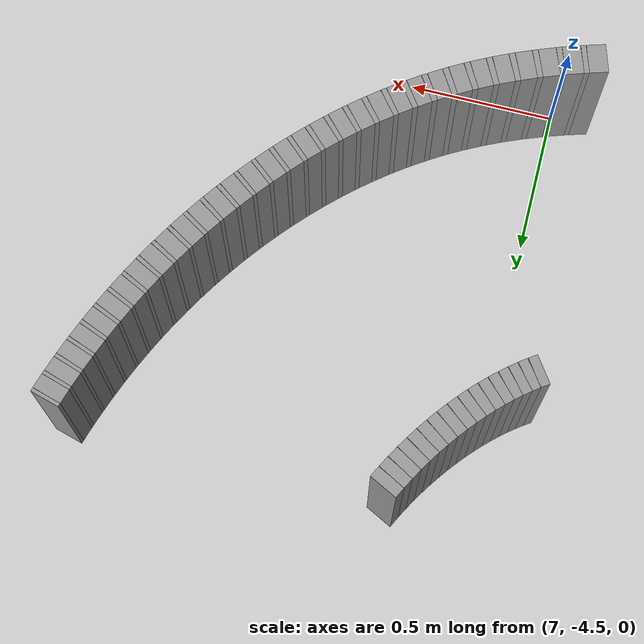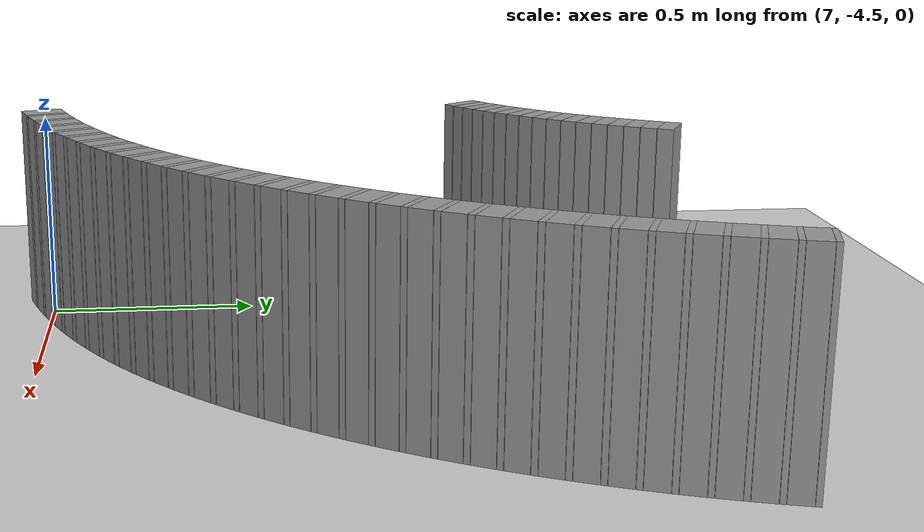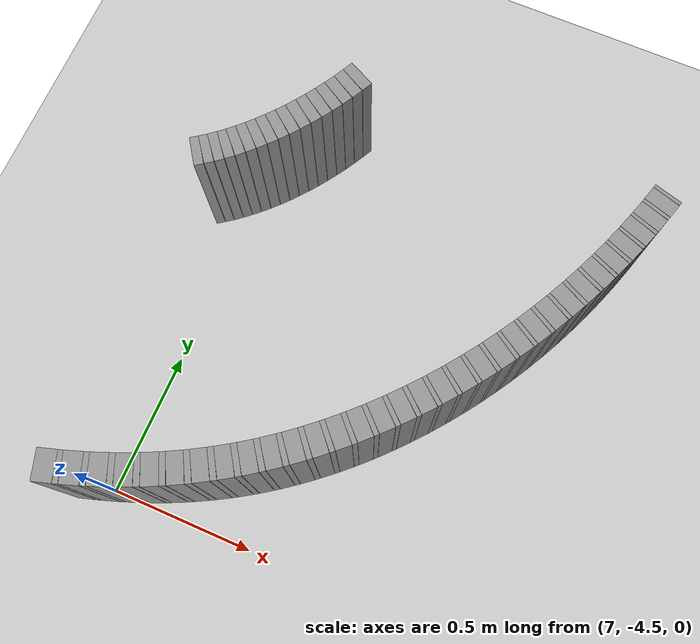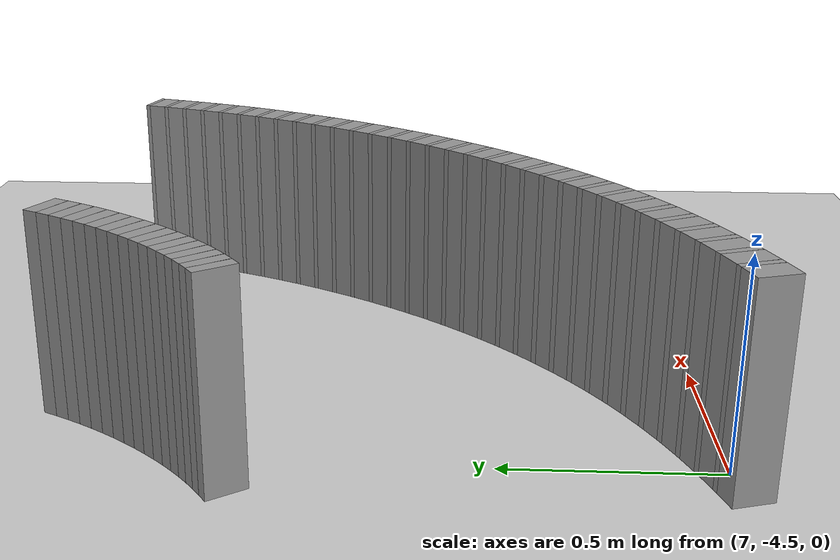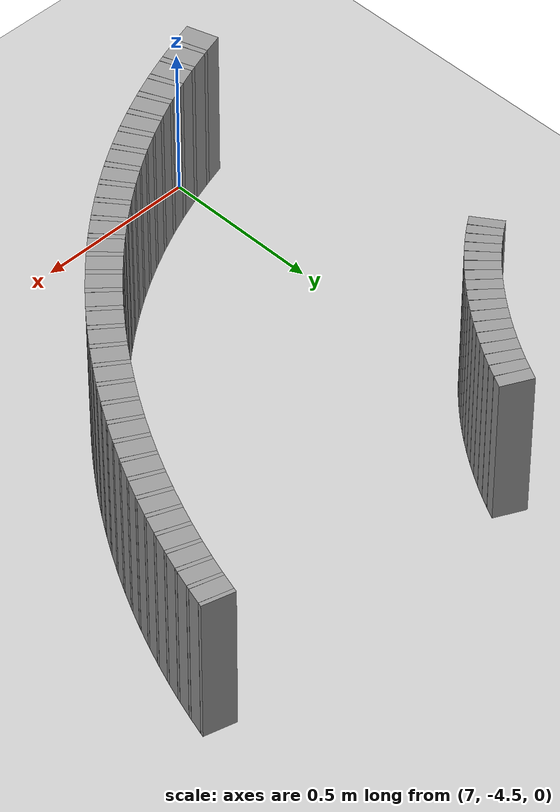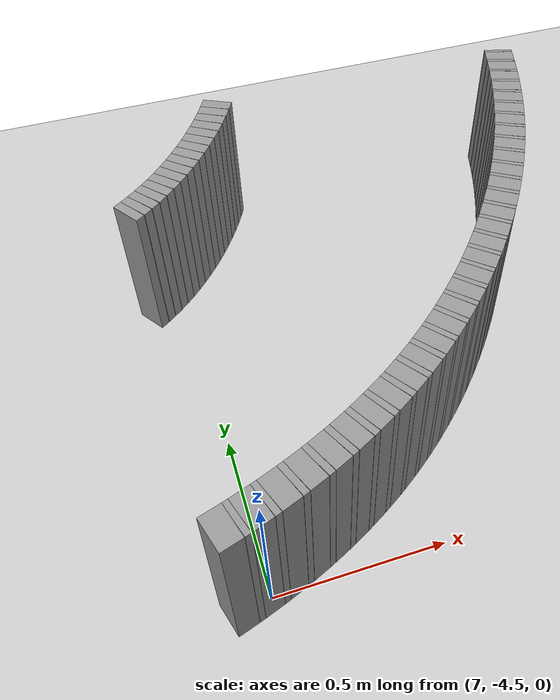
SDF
<sdf version="1.6">
 <world name="default">
  <include><uri>model://ground_plane</uri></include>
  <include><uri>model://sun</uri></include>
  <model name="wall_257_outward">
   <static>true</static>
   <link name="link">
    <collision name="collision">
     <geometry><box><size>0.012117398656583704 0.1 0.5</size></box></geometry>
    </collision>
    <visual name="visual">
     <geometry><box><size>0.012117398656583704 0.1 0.5</size></box></geometry>
     <material>
      <script><uri>file://media/materials/scripts/gazebo.material</uri><name>Gazebo/Gray</name></script>
     </material>
    </visual>
   </link>
   <pose>8.311836411692706 -2.988323035642761 0.25 0 0 -1.8441570290043392</pose>
  </model>
  <model name="wall_258_outward">
   <static>true</static>
   <link name="link">
    <collision name="collision">
     <geometry><box><size>0.050341118411923264 0.1 0.5</size></box></geometry>
    </collision>
    <visual name="visual">
     <geometry><box><size>0.050341118411923264 0.1 0.5</size></box></geometry>
     <material>
      <script><uri>file://media/materials/scripts/gazebo.material</uri><name>Gazebo/Gray</name></script>
     </material>
    </visual>
   </link>
   <pose>8.303112306214574 -3.018308601828476 0.25 0 0 -1.8562747242161695</pose>
  </model>
  <model name="wall_259_outward">
   <static>true</static>
   <link name="link">
    <collision name="collision">
     <geometry><box><size>0.012215638567459722 0.1 0.5</size></box></geometry>
    </collision>
    <visual name="visual">
     <geometry><box><size>0.012215638567459722 0.1 0.5</size></box></geometry>
     <material>
      <script><uri>file://media/materials/scripts/gazebo.material</uri><name>Gazebo/Gray</name></script>
     </material>
    </visual>
   </link>
   <pose>8.294232335303803 -3.048299602741462 0.25 0 0 -1.8684906666106553</pose>
  </model>
  <model name="wall_260_outward">
   <static>true</static>
   <link name="link">
    <collision name="collision">
     <geometry><box><size>0.050685427805786706 0.1 0.5</size></box></geometry>
    </collision>
    <visual name="visual">
     <geometry><box><size>0.050685427805786706 0.1 0.5</size></box></geometry>
     <material>
      <script><uri>file://media/materials/scripts/gazebo.material</uri><name>Gazebo/Gray</name></script>
     </material>
    </visual>
   </link>
   <pose>8.284711961249569 -3.0782741822526694 0.25 0 0 -1.8807066090052074</pose>
  </model>
  <model name="wall_261_outward">
   <static>true</static>
   <link name="link">
    <collision name="collision">
     <geometry><box><size>0.012362790423582197 0.1 0.5</size></box></geometry>
    </collision>
    <visual name="visual">
     <geometry><box><size>0.012362790423582197 0.1 0.5</size></box></geometry>
     <material>
      <script><uri>file://media/materials/scripts/gazebo.material</uri><name>Gazebo/Gray</name></script>
     </material>
    </visual>
   </link>
   <pose>8.275025318324577 -3.108272756564287 0.25 0 0 -1.8930697143691186</pose>
  </model>
  <model name="wall_262_outward">
   <static>true</static>
   <link name="link">
    <collision name="collision">
     <geometry><box><size>0.05105642980769891 0.1 0.5</size></box></geometry>
    </collision>
    <visual name="visual">
     <geometry><box><size>0.05105642980769891 0.1 0.5</size></box></geometry>
     <material>
      <script><uri>file://media/materials/scripts/gazebo.material</uri><name>Gazebo/Gray</name></script>
     </material>
    </visual>
   </link>
   <pose>8.264683398165502 -3.138248078785422 0.25 0 0 -1.9054328197328334</pose>
  </model>
  <model name="wall_263_outward">
   <static>true</static>
   <link name="link">
    <collision name="collision">
     <geometry><box><size>0.012544282890165561 0.1 0.5</size></box></geometry>
    </collision>
    <visual name="visual">
     <geometry><box><size>0.012544282890165561 0.1 0.5</size></box></geometry>
     <material>
      <script><uri>file://media/materials/scripts/gazebo.material</uri><name>Gazebo/Gray</name></script>
     </material>
    </visual>
   </link>
   <pose>8.254165186090212 -3.168258155124505 0.25 0 0 -1.917977431638995</pose>
  </model>
  <model name="wall_264_outward">
   <static>true</static>
   <link name="link">
    <collision name="collision">
     <geometry><box><size>0.05144195458399046 0.1 0.5</size></box></geometry>
    </collision>
    <visual name="visual">
     <geometry><box><size>0.05144195458399046 0.1 0.5</size></box></geometry>
     <material>
      <script><uri>file://media/materials/scripts/gazebo.material</uri><name>Gazebo/Gray</name></script>
     </material>
    </visual>
   </link>
   <pose>8.242976865033542 -3.1982307381199235 0.25 0 0 -1.9305220435451738</pose>
  </model>
  <model name="wall_265_outward">
   <static>true</static>
   <link name="link">
    <collision name="collision">
     <geometry><box><size>0.012773202160741256 0.1 0.5</size></box></geometry>
    </collision>
    <visual name="visual">
     <geometry><box><size>0.012773202160741256 0.1 0.5</size></box></geometry>
     <material>
      <script><uri>file://media/materials/scripts/gazebo.material</uri><name>Gazebo/Gray</name></script>
     </material>
    </visual>
   </link>
   <pose>8.231598262497474 -3.22825401560275 0.25 0 0 -1.9432955930660338</pose>
  </model>
  <model name="wall_266_outward">
   <static>true</static>
   <link name="link">
    <collision name="collision">
     <geometry><box><size>0.05183221490308721 0.1 0.5</size></box></geometry>
    </collision>
    <visual name="visual">
     <geometry><box><size>0.05183221490308721 0.1 0.5</size></box></geometry>
     <material>
      <script><uri>file://media/materials/scripts/gazebo.material</uri><name>Gazebo/Gray</name></script>
     </material>
    </visual>
   </link>
   <pose>8.219534311234566 -3.258218979354377 0.25 0 0 -1.956069142586938</pose>
  </model>
  <model name="wall_267_outward">
   <static>true</static>
   <link name="link">
    <collision name="collision">
     <geometry><box><size>0.013014942347406548 0.1 0.5</size></box></geometry>
    </collision>
    <visual name="visual">
     <geometry><box><size>0.013014942347406548 0.1 0.5</size></box></geometry>
     <material>
      <script><uri>file://media/materials/scripts/gazebo.material</uri><name>Gazebo/Gray</name></script>
     </material>
    </visual>
   </link>
   <pose>8.207270863555824 -3.2882334380961953 0.25 0 0 -1.9690844523931637</pose>
  </model>
  <model name="wall_268_outward">
   <static>true</static>
   <link name="link">
    <collision name="collision">
     <geometry><box><size>0.05221585492356248 0.1 0.5</size></box></geometry>
    </collision>
    <visual name="visual">
     <geometry><box><size>0.05221585492356248 0.1 0.5</size></box></geometry>
     <material>
      <script><uri>file://media/materials/scripts/gazebo.material</uri><name>Gazebo/Gray</name></script>
     </material>
    </visual>
   </link>
   <pose>8.194308935031506 -3.318162084194831 0.25 0 0 -1.982099762199294</pose>
  </model>
  <model name="wall_269_outward">
   <static>true</static>
   <link name="link">
    <collision name="collision">
     <geometry><box><size>0.013266602703595988 0.1 0.5</size></box></geometry>
    </collision>
    <visual name="visual">
     <geometry><box><size>0.013266602703595988 0.1 0.5</size></box></geometry>
     <material>
      <script><uri>file://media/materials/scripts/gazebo.material</uri><name>Gazebo/Gray</name></script>
     </material>
    </visual>
   </link>
   <pose>8.181138419085965 -3.34813699190355 0.25 0 0 -1.9953667540933722</pose>
  </model>
  <model name="wall_270_outward">
   <static>true</static>
   <link name="link">
    <collision name="collision">
     <geometry><box><size>0.052581042324537204 0.1 0.5</size></box></geometry>
    </collision>
    <visual name="visual">
     <geometry><box><size>0.052581042324537204 0.1 0.5</size></box></geometry>
     <material>
      <script><uri>file://media/materials/scripts/gazebo.material</uri><name>Gazebo/Gray</name></script>
     </material>
    </visual>
   </link>
   <pose>8.16725926295241 -3.377991914763429 0.25 0 0 -2.0086337459876487</pose>
  </model>
  <model name="wall_271_outward">
   <static>true</static>
   <link name="link">
    <collision name="collision">
     <geometry><box><size>0.01351271025179977 0.1 0.5</size></box></geometry>
    </collision>
    <visual name="visual">
     <geometry><box><size>0.01351271025179977 0.1 0.5</size></box></geometry>
     <material>
      <script><uri>file://media/materials/scripts/gazebo.material</uri><name>Gazebo/Gray</name></script>
     </material>
    </visual>
   </link>
   <pose>8.15316556330174 -3.4078822347244837 0.25 0 0 -2.0221468674950125</pose>
  </model>
  <model name="wall_272_outward">
   <static>true</static>
   <link name="link">
    <collision name="collision">
     <geometry><box><size>0.05291419419117755 0.1 0.5</size></box></geometry>
    </collision>
    <visual name="visual">
     <geometry><box><size>0.05291419419117755 0.1 0.5</size></box></geometry>
     <material>
      <script><uri>file://media/materials/scripts/gazebo.material</uri><name>Gazebo/Gray</name></script>
     </material>
    </visual>
   </link>
   <pose>8.13835782664763 -3.437611541863321 0.25 0 0 -2.035659989002458</pose>
  </model>
  <model name="wall_273_outward">
   <static>true</static>
   <link name="link">
    <collision name="collision">
     <geometry><box><size>0.013732710071505594 0.1 0.5</size></box></geometry>
    </collision>
    <visual name="visual">
     <geometry><box><size>0.013732710071505594 0.1 0.5</size></box></geometry>
     <material>
      <script><uri>file://media/materials/scripts/gazebo.material</uri><name>Gazebo/Gray</name></script>
     </material>
    </visual>
   </link>
   <pose>8.123334894673405 -3.467355948324669 0.25 0 0 -2.049393130746388</pose>
  </model>
  <model name="wall_274_outward">
   <static>true</static>
   <link name="link">
    <collision name="collision">
     <geometry><box><size>0.053199249804912356 0.1 0.5</size></box></geometry>
    </collision>
    <visual name="visual">
     <geometry><box><size>0.053199249804912356 0.1 0.5</size></box></geometry>
     <material>
      <script><uri>file://media/materials/scripts/gazebo.material</uri><name>Gazebo/Gray</name></script>
     </material>
    </visual>
   </link>
   <pose>8.107599582834549 -3.4968913055915074 0.25 0 0 -2.063126272490414</pose>
  </model>
  <model name="wall_275_outward">
   <static>true</static>
   <link name="link">
    <collision name="collision">
     <geometry><box><size>0.013925907889457318 0.1 0.5</size></box></geometry>
    </collision>
    <visual name="visual">
     <geometry><box><size>0.013925907889457318 0.1 0.5</size></box></geometry>
     <material>
      <script><uri>file://media/materials/scripts/gazebo.material</uri><name>Gazebo/Gray</name></script>
     </material>
    </visual>
   </link>
   <pose>8.0916500796604 -3.526421360235971 0.25 0 0 -2.0770526305298547</pose>
  </model>
  <model name="wall_276_outward">
   <static>true</static>
   <link name="link">
    <collision name="collision">
     <geometry><box><size>0.053421078922679874 0.1 0.5</size></box></geometry>
    </collision>
    <visual name="visual">
     <geometry><box><size>0.053421078922679874 0.1 0.5</size></box></geometry>
     <material>
      <script><uri>file://media/materials/scripts/gazebo.material</uri><name>Gazebo/Gray</name></script>
     </material>
    </visual>
   </link>
   <pose>8.074997527339576 -3.55568841662239 0.25 0 0 -2.090978988569217</pose>
  </model>
  <model name="wall_277_outward">
   <static>true</static>
   <link name="link">
    <collision name="collision">
     <geometry><box><size>0.01408927794531491 0.1 0.5</size></box></geometry>
    </collision>
    <visual name="visual">
     <geometry><box><size>0.01408927794531491 0.1 0.5</size></box></geometry>
     <material>
      <script><uri>file://media/materials/scripts/gazebo.material</uri><name>Gazebo/Gray</name></script>
     </material>
    </visual>
   </link>
   <pose>8.058134121266002 -3.5849288039731713 0.25 0 0 -2.1050687326946447</pose>
  </model>
  <model name="wall_278_outward">
   <static>true</static>
   <link name="link">
    <collision name="collision">
     <geometry><box><size>0.05356233773347308 0.1 0.5</size></box></geometry>
    </collision>
    <visual name="visual">
     <geometry><box><size>0.05356233773347308 0.1 0.5</size></box></geometry>
     <material>
      <script><uri>file://media/materials/scripts/gazebo.material</uri><name>Gazebo/Gray</name></script>
     </material>
    </visual>
   </link>
   <pose>8.04058612414238 -3.6138461970070836 0.25 0 0 -2.119158476820119</pose>
  </model>
  <model name="wall_279_outward">
   <static>true</static>
   <link name="link">
    <collision name="collision">
     <geometry><box><size>0.014243860450679475 0.1 0.5</size></box></geometry>
    </collision>
    <visual name="visual">
     <geometry><box><size>0.014243860450679475 0.1 0.5</size></box></geometry>
     <material>
      <script><uri>file://media/materials/scripts/gazebo.material</uri><name>Gazebo/Gray</name></script>
     </material>
    </visual>
   </link>
   <pose>8.022826576716579 -3.642724907224764 0.25 0 0 -2.133402818965126</pose>
  </model>
  <model name="wall_280_outward">
   <static>true</static>
   <link name="link">
    <collision name="collision">
     <geometry><box><size>0.0536097784663583 0.1 0.5</size></box></geometry>
    </collision>
    <visual name="visual">
     <geometry><box><size>0.0536097784663583 0.1 0.5</size></box></geometry>
     <material>
      <script><uri>file://media/materials/scripts/gazebo.material</uri><name>Gazebo/Gray</name></script>
     </material>
    </visual>
   </link>
   <pose>8.00440875088794 -3.6712165557660343 0.25 0 0 -2.14764716111015</pose>
  </model>
  <model name="wall_281_outward">
   <static>true</static>
   <link name="link">
    <collision name="collision">
     <geometry><box><size>0.014389473011745106 0.1 0.5</size></box></geometry>
    </collision>
    <visual name="visual">
     <geometry><box><size>0.014389473011745106 0.1 0.5</size></box></geometry>
     <material>
      <script><uri>file://media/materials/scripts/gazebo.material</uri><name>Gazebo/Gray</name></script>
     </material>
    </visual>
   </link>
   <pose>7.985779425141965 -3.6996574214138485 0.25 0 0 -2.162037130741516</pose>
  </model>
  <model name="wall_282_outward">
   <static>true</static>
   <link name="link">
    <collision name="collision">
     <geometry><box><size>0.05355367873931592 0.1 0.5</size></box></geometry>
    </collision>
    <visual name="visual">
     <geometry><box><size>0.05355367873931592 0.1 0.5</size></box></geometry>
     <material>
      <script><uri>file://media/materials/scripts/gazebo.material</uri><name>Gazebo/Gray</name></script>
     </material>
    </visual>
   </link>
   <pose>7.966525599355624 -3.7276452449804607 0.25 0 0 -2.1764271003728943</pose>
  </model>
  <model name="wall_283_outward">
   <static>true</static>
   <link name="link">
    <collision name="collision">
     <geometry><box><size>0.01454430610379394 0.1 0.5</size></box></geometry>
    </collision>
    <visual name="visual">
     <geometry><box><size>0.01454430610379394 0.1 0.5</size></box></geometry>
     <material>
      <script><uri>file://media/materials/scripts/gazebo.material</uri><name>Gazebo/Gray</name></script>
     </material>
    </visual>
   </link>
   <pose>7.947055643648167 -3.7555775473546835 0.25 0 0 -2.1909719193016106</pose>
  </model>
  <model name="wall_284_outward">
   <static>true</static>
   <link name="link">
    <collision name="collision">
     <geometry><box><size>0.053390203226025654 0.1 0.5</size></box></geometry>
    </collision>
    <visual name="visual">
     <geometry><box><size>0.053390203226025654 0.1 0.5</size></box></geometry>
     <material>
      <script><uri>file://media/materials/scripts/gazebo.material</uri><name>Gazebo/Gray</name></script>
     </material>
    </visual>
   </link>
   <pose>7.927000303194991 -3.782991351191007 0.25 0 0 -2.205516738230303</pose>
  </model>
  <model name="wall_285_outward">
   <static>true</static>
   <link name="link">
    <collision name="collision">
     <geometry><box><size>0.014730371395783579 0.1 0.5</size></box></geometry>
    </collision>
    <visual name="visual">
     <geometry><box><size>0.014730371395783579 0.1 0.5</size></box></geometry>
     <material>
      <script><uri>file://media/materials/scripts/gazebo.material</uri><name>Gazebo/Gray</name></script>
     </material>
    </visual>
   </link>
   <pose>7.90671728607773 -3.8103529981418784 0.25 0 0 -2.2202476423868367</pose>
  </model>
  <model name="wall_286_outward">
   <static>true</static>
   <link name="link">
    <collision name="collision">
     <geometry><box><size>0.053122171839467915 0.1 0.5</size></box></geometry>
    </collision>
    <visual name="visual">
     <geometry><box><size>0.053122171839467915 0.1 0.5</size></box></geometry>
     <material>
      <script><uri>file://media/materials/scripts/gazebo.material</uri><name>Gazebo/Gray</name></script>
     </material>
    </visual>
   </link>
   <pose>7.885890531152047 -3.837133508496724 0.25 0 0 -2.234978546543439</pose>
  </model>
  <model name="wall_287_outward">
   <static>true</static>
   <link name="link">
    <collision name="collision">
     <geometry><box><size>0.014963382088514948 0.1 0.5</size></box></geometry>
    </collision>
    <visual name="visual">
     <geometry><box><size>0.014963382088514948 0.1 0.5</size></box></geometry>
     <material>
      <script><uri>file://media/materials/scripts/gazebo.material</uri><name>Gazebo/Gray</name></script>
     </material>
    </visual>
   </link>
   <pose>7.864818402552192 -3.863869842628829 0.25 0 0 -2.2499424870787967</pose>
  </model>
  <model name="wall_288_outward">
   <static>true</static>
   <link name="link">
    <collision name="collision">
     <geometry><box><size>0.05276100283104529 0.1 0.5</size></box></geometry>
    </collision>
    <visual name="visual">
     <geometry><box><size>0.05276100283104529 0.1 0.5</size></box></geometry>
     <material>
      <script><uri>file://media/materials/scripts/gazebo.material</uri><name>Gazebo/Gray</name></script>
     </material>
    </visual>
   </link>
   <pose>7.843243284903986 -3.889968083609948 0.25 0 0 -2.264906427614072</pose>
  </model>
  <model name="wall_289_outward">
   <static>true</static>
   <link name="link">
    <collision name="collision">
     <geometry><box><size>0.015258550321621099 0.1 0.5</size></box></geometry>
    </collision>
    <visual name="visual">
     <geometry><box><size>0.015258550321621099 0.1 0.5</size></box></geometry>
     <material>
      <script><uri>file://media/materials/scripts/gazebo.material</uri><name>Gazebo/Gray</name></script>
     </material>
    </visual>
   </link>
   <pose>7.821398264607518 -3.9160336380699374 0.25 0 0 -2.280165570088842</pose>
  </model>
  <model name="wall_290_outward">
   <static>true</static>
   <link name="link">
    <collision name="collision">
     <geometry><box><size>0.05232749911911429 0.1 0.5</size></box></geometry>
    </collision>
    <visual name="visual">
     <geometry><box><size>0.05232749911911429 0.1 0.5</size></box></geometry>
     <material>
      <script><uri>file://media/materials/scripts/gazebo.material</uri><name>Gazebo/Gray</name></script>
     </material>
    </visual>
   </link>
   <pose>7.79908606487815 -3.9414125227244847 0.25 0 0 -2.2954247125637073</pose>
  </model>
  <model name="wall_291_outward">
   <static>true</static>
   <link name="link">
    <collision name="collision">
     <geometry><box><size>0.015632712555497287 0.1 0.5</size></box></geometry>
    </collision>
    <visual name="visual">
     <geometry><box><size>0.015632712555497287 0.1 0.5</size></box></geometry>
     <material>
      <script><uri>file://media/materials/scripts/gazebo.material</uri><name>Gazebo/Gray</name></script>
     </material>
    </visual>
   </link>
   <pose>7.776471248815947 -3.9667732740305395 0.25 0 0 -2.3110580619140837</pose>
  </model>
  <model name="wall_292_outward">
   <static>true</static>
   <link name="link">
    <collision name="collision">
     <geometry><box><size>0.05184989642224712 0.1 0.5</size></box></geometry>
    </collision>
    <visual name="visual">
     <geometry><box><size>0.05184989642224712 0.1 0.5</size></box></geometry>
     <material>
      <script><uri>file://media/materials/scripts/gazebo.material</uri><name>Gazebo/Gray</name></script>
     </material>
    </visual>
   </link>
   <pose>7.75341629799529 -3.991408520062766 0.25 0 0 -2.3266914112643984</pose>
  </model>
  <model name="wall_293_outward">
   <static>true</static>
   <link name="link">
    <collision name="collision">
     <geometry><box><size>0.016072291321149956 0.1 0.5</size></box></geometry>
    </collision>
    <visual name="visual">
     <geometry><box><size>0.016072291321149956 0.1 0.5</size></box></geometry>
     <material>
      <script><uri>file://media/materials/scripts/gazebo.material</uri><name>Gazebo/Gray</name></script>
     </material>
    </visual>
   </link>
   <pose>7.730027744734233 -4.016031226100434 0.25 0 0 -2.342764394627834</pose>
  </model>
  <model name="wall_294_outward">
   <static>true</static>
   <link name="link">
    <collision name="collision">
     <geometry><box><size>0.05136481578525788 0.1 0.5</size></box></geometry>
    </collision>
    <visual name="visual">
     <geometry><box><size>0.05136481578525788 0.1 0.5</size></box></geometry>
     <material>
      <script><uri>file://media/materials/scripts/gazebo.material</uri><name>Gazebo/Gray</name></script>
     </material>
    </visual>
   </link>
   <pose>7.706214020470634 -4.03990158582199 0.25 0 0 -2.358837377991249</pose>
  </model>
  <model name="wall_295_outward">
   <static>true</static>
   <link name="link">
    <collision name="collision">
     <geometry><box><size>0.016592860321072087 0.1 0.5</size></box></geometry>
    </collision>
    <visual name="visual">
     <geometry><box><size>0.016592860321072087 0.1 0.5</size></box></geometry>
     <material>
      <script><uri>file://media/materials/scripts/gazebo.material</uri><name>Gazebo/Gray</name></script>
     </material>
    </visual>
   </link>
   <pose>7.6820276638574505 -4.063766265192893 0.25 0 0 -2.37543099980604</pose>
  </model>
  <model name="wall_296_outward">
   <static>true</static>
   <link name="link">
    <collision name="collision">
     <geometry><box><size>0.050914831815419184 0.1 0.5</size></box></geometry>
    </collision>
    <visual name="visual">
     <geometry><box><size>0.050914831815419184 0.1 0.5</size></box></geometry>
     <material>
      <script><uri>file://media/materials/scripts/gazebo.material</uri><name>Gazebo/Gray</name></script>
     </material>
    </visual>
   </link>
   <pose>7.657415041976881 -4.086863512101939 0.25 0 0 -2.3920246216208674</pose>
  </model>
  <model name="wall_297_outward">
   <static>true</static>
   <link name="link">
    <collision name="collision">
     <geometry><box><size>0.017174337513980086 0.1 0.5</size></box></geometry>
    </collision>
    <visual name="visual">
     <geometry><box><size>0.017174337513980086 0.1 0.5</size></box></geometry>
     <material>
      <script><uri>file://media/materials/scripts/gazebo.material</uri><name>Gazebo/Gray</name></script>
     </material>
    </visual>
   </link>
   <pose>7.632395422695447 -4.109950043053047 0.25 0 0 -2.4091998035312407</pose>
  </model>
  <model name="wall_298_outward">
   <static>true</static>
   <link name="link">
    <collision name="collision">
     <geometry><box><size>0.05054507758063596 0.1 0.5</size></box></geometry>
    </collision>
    <visual name="visual">
     <geometry><box><size>0.05054507758063596 0.1 0.5</size></box></geometry>
     <material>
      <script><uri>file://media/materials/scripts/gazebo.material</uri><name>Gazebo/Gray</name></script>
     </material>
    </visual>
   </link>
   <pose>7.606930689156213 -4.132265130429495 0.25 0 0 -2.426374985441657</pose>
  </model>
  <model name="wall_299_outward">
   <static>true</static>
   <link name="link">
    <collision name="collision">
     <geometry><box><size>0.017798660085727773 0.1 0.5</size></box></geometry>
    </collision>
    <visual name="visual">
     <geometry><box><size>0.017798660085727773 0.1 0.5</size></box></geometry>
     <material>
      <script><uri>file://media/materials/scripts/gazebo.material</uri><name>Gazebo/Gray</name></script>
     </material>
    </visual>
   </link>
   <pose>7.581029810108721 -4.15455391301497 0.25 0 0 -2.444174585407766</pose>
  </model>
  <model name="wall_300_outward">
   <static>true</static>
   <link name="link">
    <collision name="collision">
     <geometry><box><size>0.05030523966726531 0.1 0.5</size></box></geometry>
    </collision>
    <visual name="visual">
     <geometry><box><size>0.05030523966726531 0.1 0.5</size></box></geometry>
     <material>
      <script><uri>file://media/materials/scripts/gazebo.material</uri><name>Gazebo/Gray</name></script>
     </material>
    </visual>
   </link>
   <pose>7.554644423477682 -4.176077754350853 0.25 0 0 -2.461974185373911</pose>
  </model>
  <model name="wall_301_outward">
   <static>true</static>
   <link name="link">
    <collision name="collision">
     <geometry><box><size>0.01844069251449232 0.1 0.5</size></box></geometry>
    </collision>
    <visual name="visual">
     <geometry><box><size>0.01844069251449232 0.1 0.5</size></box></geometry>
     <material>
      <script><uri>file://media/materials/scripts/gazebo.material</uri><name>Gazebo/Gray</name></script>
     </material>
    </visual>
   </link>
   <pose>7.5278030550458634 -4.197547800153711 0.25 0 0 -2.4804159232027327</pose>
  </model>
  <model name="wall_302_outward">
   <static>true</static>
   <link name="link">
    <collision name="collision">
     <geometry><box><size>0.050244140902078176 0.1 0.5</size></box></geometry>
    </collision>
    <visual name="visual">
     <geometry><box><size>0.050244140902078176 0.1 0.5</size></box></geometry>
     <material>
      <script><uri>file://media/materials/scripts/gazebo.material</uri><name>Gazebo/Gray</name></script>
     </material>
    </visual>
   </link>
   <pose>7.500416512088126 -4.218267357923338 0.25 0 0 -2.4988576610315287</pose>
  </model>
  <model name="wall_303_outward">
   <static>true</static>
   <link name="link">
    <collision name="collision">
     <geometry><box><size>0.01903111542825653 0.1 0.5</size></box></geometry>
    </collision>
    <visual name="visual">
     <geometry><box><size>0.01903111542825653 0.1 0.5</size></box></geometry>
     <material>
      <script><uri>file://media/materials/scripts/gazebo.material</uri><name>Gazebo/Gray</name></script>
     </material>
    </visual>
   </link>
   <pose>7.4725833313026 -4.2388827100743836 0.25 0 0 -2.517889925439247</pose>
  </model>
  <model name="wall_304_outward">
   <static>true</static>
   <link name="link">
    <collision name="collision">
     <geometry><box><size>0.05040723951939231 0.1 0.5</size></box></geometry>
    </collision>
    <visual name="visual">
     <geometry><box><size>0.05040723951939231 0.1 0.5</size></box></geometry>
     <material>
      <script><uri>file://media/materials/scripts/gazebo.material</uri><name>Gazebo/Gray</name></script>
     </material>
    </visual>
   </link>
   <pose>7.444124595982645 -4.258768252546634 0.25 0 0 -2.536922189846982</pose>
  </model>
  <model name="wall_305_outward">
   <static>true</static>
   <link name="link">
    <collision name="collision">
     <geometry><box><size>0.019545057753312008 0.1 0.5</size></box></geometry>
    </collision>
    <visual name="visual">
     <geometry><box><size>0.019545057753312008 0.1 0.5</size></box></geometry>
     <material>
      <script><uri>file://media/materials/scripts/gazebo.material</uri><name>Gazebo/Gray</name></script>
     </material>
    </visual>
   </link>
   <pose>7.415243037782065 -4.278493679545305 0.25 0 0 -2.5564684922131984</pose>
  </model>
  <model name="wall_306_outward">
   <static>true</static>
   <link name="link">
    <collision name="collision">
     <geometry><box><size>0.050840453734269826 0.1 0.5</size></box></geometry>
    </collision>
    <visual name="visual">
     <geometry><box><size>0.050840453734269826 0.1 0.5</size></box></geometry>
     <material>
      <script><uri>file://media/materials/scripts/gazebo.material</uri><name>Gazebo/Gray</name></script>
     </material>
    </visual>
   </link>
   <pose>7.385634467072588 -4.297513871174495 0.25 0 0 -2.5760147945793768</pose>
  </model>
  <model name="wall_307_outward">
   <static>true</static>
   <link name="link">
    <collision name="collision">
     <geometry><box><size>0.019910275491295464 0.1 0.5</size></box></geometry>
    </collision>
    <visual name="visual">
     <geometry><box><size>0.019910275491295464 0.1 0.5</size></box></geometry>
     <material>
      <script><uri>file://media/materials/scripts/gazebo.material</uri><name>Gazebo/Gray</name></script>
     </material>
    </visual>
   </link>
   <pose>7.355663232188629 -4.3163032610668415 0.25 0 0 -2.5959263857741925</pose>
  </model>
  <model name="wall_308_outward">
   <static>true</static>
   <link name="link">
    <collision name="collision">
     <geometry><box><size>0.051580244728148206 0.1 0.5</size></box></geometry>
    </collision>
    <visual name="visual">
     <geometry><box><size>0.051580244728148206 0.1 0.5</size></box></geometry>
     <material>
      <script><uri>file://media/materials/scripts/gazebo.material</uri><name>Gazebo/Gray</name></script>
     </material>
    </visual>
   </link>
   <pose>7.324846713890645 -4.334413038313063 0.25 0 0 -2.6158379769690385</pose>
  </model>
  <model name="wall_309_outward">
   <static>true</static>
   <link name="link">
    <collision name="collision">
     <geometry><box><size>0.020086797336491026 0.1 0.5</size></box></geometry>
    </collision>
    <visual name="visual">
     <geometry><box><size>0.020086797336491026 0.1 0.5</size></box></geometry>
     <material>
      <script><uri>file://media/materials/scripts/gazebo.material</uri><name>Gazebo/Gray</name></script>
     </material>
    </visual>
   </link>
   <pose>7.293753179625455 -4.352221149849493 0.25 0 0 -2.635926125319104</pose>
  </model>
  <model name="wall_310_outward">
   <static>true</static>
   <link name="link">
    <collision name="collision">
     <geometry><box><size>0.05265723161700306 0.1 0.5</size></box></geometry>
    </collision>
    <visual name="visual">
     <geometry><box><size>0.05265723161700306 0.1 0.5</size></box></geometry>
     <material>
      <script><uri>file://media/materials/scripts/gazebo.material</uri><name>Gazebo/Gray</name></script>
     </material>
    </visual>
   </link>
   <pose>7.261681530574151 -4.369374168880787 0.25 0 0 -2.656014273669133</pose>
  </model>
  <model name="wall_311_outward">
   <static>true</static>
   <link name="link">
    <collision name="collision">
     <geometry><box><size>0.02003290713392188 0.1 0.5</size></box></geometry>
    </collision>
    <visual name="visual">
     <geometry><box><size>0.02003290713392188 0.1 0.5</size></box></geometry>
     <material>
      <script><uri>file://media/materials/scripts/gazebo.material</uri><name>Gazebo/Gray</name></script>
     </material>
    </visual>
   </link>
   <pose>7.22944589015902 -4.3861587364699295 0.25 0 0 -2.6760485209707032</pose>
  </model>
  <model name="wall_312_outward">
   <static>true</static>
   <link name="link">
    <collision name="collision">
     <geometry><box><size>0.054095221834583075 0.1 0.5</size></box></geometry>
    </collision>
    <visual name="visual">
     <geometry><box><size>0.054095221834583075 0.1 0.5</size></box></geometry>
     <material>
      <script><uri>file://media/materials/scripts/gazebo.material</uri><name>Gazebo/Gray</name></script>
     </material>
    </visual>
   </link>
   <pose>7.196087890912499 -4.402310517365326 0.25 0 0 -2.6960827682722517</pose>
  </model>
  <model name="wall_313_outward">
   <static>true</static>
   <link name="link">
    <collision name="collision">
     <geometry><box><size>0.01972134276654813 0.1 0.5</size></box></geometry>
    </collision>
    <visual name="visual">
     <geometry><box><size>0.01972134276654813 0.1 0.5</size></box></geometry>
     <material>
      <script><uri>file://media/materials/scripts/gazebo.material</uri><name>Gazebo/Gray</name></script>
     </material>
    </visual>
   </link>
   <pose>7.16270011856688 -4.418038652001591 0.25 0 0 -2.7158053896373517</pose>
  </model>
  <model name="wall_314_outward">
   <static>true</static>
   <link name="link">
    <collision name="collision">
     <geometry><box><size>0.055905665418358015 0.1 0.5</size></box></geometry>
    </collision>
    <visual name="visual">
     <geometry><box><size>0.055905665418358015 0.1 0.5</size></box></geometry>
     <material>
      <script><uri>file://media/materials/scripts/gazebo.material</uri><name>Gazebo/Gray</name></script>
     </material>
    </visual>
   </link>
   <pose>7.128040093530943 -4.4331527693507295 0.25 0 0 -2.7355280110024967</pose>
  </model>
  <model name="wall_315_outward">
   <static>true</static>
   <link name="link">
    <collision name="collision">
     <geometry><box><size>0.019168312742426887 0.1 0.5</size></box></geometry>
    </collision>
    <visual name="visual">
     <geometry><box><size>0.019168312742426887 0.1 0.5</size></box></geometry>
     <material>
      <script><uri>file://media/materials/scripts/gazebo.material</uri><name>Gazebo/Gray</name></script>
     </material>
    </visual>
   </link>
   <pose>7.093484574749496 -4.447810300772806 0.25 0 0 -2.754697497756078</pose>
  </model>
  <model name="wall_316_outward">
   <static>true</static>
   <link name="link">
    <collision name="collision">
     <geometry><box><size>0.05809274058132239 0.1 0.5</size></box></geometry>
    </collision>
    <visual name="visual">
     <geometry><box><size>0.05809274058132239 0.1 0.5</size></box></geometry>
     <material>
      <script><uri>file://media/materials/scripts/gazebo.material</uri><name>Gazebo/Gray</name></script>
     </material>
    </visual>
   </link>
   <pose>7.057504287099101 -4.461868543763959 0.25 0 0 -2.773866984509671</pose>
  </model>
  <model name="wall_317_outward">
   <static>true</static>
   <link name="link">
    <collision name="collision">
     <geometry><box><size>0.018377791929265325 0.1 0.5</size></box></geometry>
    </collision>
    <visual name="visual">
     <geometry><box><size>0.018377791929265325 0.1 0.5</size></box></geometry>
     <material>
      <script><uri>file://media/materials/scripts/gazebo.material</uri><name>Gazebo/Gray</name></script>
     </material>
    </visual>
   </link>
   <pose>7.0217658888558585 -4.47545575554423 0.25 0 0 -2.7922458110919783</pose>
  </model>
  <model name="wall_318_outward">
   <static>true</static>
   <link name="link">
    <collision name="collision">
     <geometry><box><size>0.06064440393491502 0.1 0.5</size></box></geometry>
    </collision>
    <visual name="visual">
     <geometry><box><size>0.06064440393491502 0.1 0.5</size></box></geometry>
     <material>
      <script><uri>file://media/materials/scripts/gazebo.material</uri><name>Gazebo/Gray</name></script>
     </material>
    </visual>
   </link>
   <pose>6.984455472424747 -4.488454431362001 0.25 0 0 -2.8106246376743527</pose>
  </model>
  <model name="wall_319_outward">
   <static>true</static>
   <link name="link">
    <collision name="collision">
     <geometry><box><size>0.01740335869245609 0.1 0.5</size></box></geometry>
    </collision>
    <visual name="visual">
     <geometry><box><size>0.01740335869245609 0.1 0.5</size></box></geometry>
     <material>
      <script><uri>file://media/materials/scripts/gazebo.material</uri><name>Gazebo/Gray</name></script>
     </material>
    </visual>
   </link>
   <pose>6.947501521663757 -4.500991931694332 0.25 0 0 -2.828028874999103</pose>
  </model>
  <model name="wall_320_outward">
   <static>true</static>
   <link name="link">
    <collision name="collision">
     <geometry><box><size>0.06354161136398793 0.1 0.5</size></box></geometry>
    </collision>
    <visual name="visual">
     <geometry><box><size>0.06354161136398793 0.1 0.5</size></box></geometry>
     <material>
      <script><uri>file://media/materials/scripts/gazebo.material</uri><name>Gazebo/Gray</name></script>
     </material>
    </visual>
   </link>
   <pose>6.908836489263956 -4.512948251127482 0.25 0 0 -2.845433112323855</pose>
  </model>
  <model name="wall_179_inward">
   <static>true</static>
   <link name="link">
    <collision name="collision">
     <geometry><box><size>0.03929021956698402 0.1 0.5</size></box></geometry>
    </collision>
    <visual name="visual">
     <geometry><box><size>0.03929021956698402 0.1 0.5</size></box></geometry>
     <material>
      <script><uri>file://media/materials/scripts/gazebo.material</uri><name>Gazebo/Gray</name></script>
     </material>
    </visual>
   </link>
   <pose>7.2444997957700075 -2.9892614290471657 0.25 0 0 -2.0356599890024394</pose>
  </model>
  <model name="wall_180_inward">
   <static>true</static>
   <link name="link">
    <collision name="collision">
     <geometry><box><size>0.039368618014835675 0.1 0.5</size></box></geometry>
    </collision>
    <visual name="visual">
     <geometry><box><size>0.039368618014835675 0.1 0.5</size></box></geometry>
     <material>
      <script><uri>file://media/materials/scripts/gazebo.material</uri><name>Gazebo/Gray</name></script>
     </material>
    </visual>
   </link>
   <pose>7.2263884876867435 -3.0241683337331695 0.25 0 0 -2.063126272490414</pose>
  </model>
  <model name="wall_181_inward">
   <static>true</static>
   <link name="link">
    <collision name="collision">
     <geometry><box><size>0.03941211142925846 0.1 0.5</size></box></geometry>
    </collision>
    <visual name="visual">
     <geometry><box><size>0.03941211142925846 0.1 0.5</size></box></geometry>
     <material>
      <script><uri>file://media/materials/scripts/gazebo.material</uri><name>Gazebo/Gray</name></script>
     </material>
    </visual>
   </link>
   <pose>7.207289429430745 -3.0586143190347874 0.25 0 0 -2.090978988569247</pose>
  </model>
  <model name="wall_182_inward">
   <static>true</static>
   <link name="link">
    <collision name="collision">
     <geometry><box><size>0.039394346638141224 0.1 0.5</size></box></geometry>
    </collision>
    <visual name="visual">
     <geometry><box><size>0.039394346638141224 0.1 0.5</size></box></geometry>
     <material>
      <script><uri>file://media/materials/scripts/gazebo.material</uri><name>Gazebo/Gray</name></script>
     </material>
    </visual>
   </link>
   <pose>7.187226814324818 -3.092522986472507 0.25 0 0 -2.1191584768201173</pose>
  </model>
  <model name="wall_183_inward">
   <static>true</static>
   <link name="link">
    <collision name="collision">
     <geometry><box><size>0.03929164417393682 0.1 0.5</size></box></geometry>
    </collision>
    <visual name="visual">
     <geometry><box><size>0.03929164417393682 0.1 0.5</size></box></geometry>
     <material>
      <script><uri>file://media/materials/scripts/gazebo.material</uri><name>Gazebo/Gray</name></script>
     </material>
    </visual>
   </link>
   <pose>7.166244293255498 -3.125798969610509 0.25 0 0 -2.147647161110129</pose>
  </model>
  <model name="wall_184_inward">
   <static>true</static>
   <link name="link">
    <collision name="collision">
     <geometry><box><size>0.03908527491963144 0.1 0.5</size></box></geometry>
    </collision>
    <visual name="visual">
     <geometry><box><size>0.03908527491963144 0.1 0.5</size></box></geometry>
     <material>
      <script><uri>file://media/materials/scripts/gazebo.material</uri><name>Gazebo/Gray</name></script>
     </material>
    </visual>
   </link>
   <pose>7.144404468211379 -3.1583326355773504 0.25 0 0 -2.1764271003729014</pose>
  </model>
  <model name="wall_185_inward">
   <static>true</static>
   <link name="link">
    <collision name="collision">
     <geometry><box><size>0.03875129599681947 0.1 0.5</size></box></geometry>
    </collision>
    <visual name="visual">
     <geometry><box><size>0.03875129599681947 0.1 0.5</size></box></geometry>
     <material>
      <script><uri>file://media/materials/scripts/gazebo.material</uri><name>Gazebo/Gray</name></script>
     </material>
    </visual>
   </link>
   <pose>7.121790383372225 -3.1900014801272816 0.25 0 0 -2.2055167382302914</pose>
  </model>
  <model name="wall_186_inward">
   <static>true</static>
   <link name="link">
    <collision name="collision">
     <geometry><box><size>0.03827365817767255 0.1 0.5</size></box></geometry>
    </collision>
    <visual name="visual">
     <geometry><box><size>0.03827365817767255 0.1 0.5</size></box></geometry>
     <material>
      <script><uri>file://media/materials/scripts/gazebo.material</uri><name>Gazebo/Gray</name></script>
     </material>
    </visual>
   </link>
   <pose>7.09850531015932 -3.2206722224796263 0.25 0 0 -2.2349785465434473</pose>
  </model>
  <model name="wall_187_inward">
   <static>true</static>
   <link name="link">
    <collision name="collision">
     <geometry><box><size>0.03764831060760862 0.1 0.5</size></box></geometry>
    </collision>
    <visual name="visual">
     <geometry><box><size>0.03764831060760862 0.1 0.5</size></box></geometry>
     <material>
      <script><uri>file://media/materials/scripts/gazebo.material</uri><name>Gazebo/Gray</name></script>
     </material>
    </visual>
   </link>
   <pose>7.074667229906003 -3.2502096501893813 0.25 0 0 -2.2649064276140836</pose>
  </model>
  <model name="wall_188_inward">
   <static>true</static>
   <link name="link">
    <collision name="collision">
     <geometry><box><size>0.03688002412643453 0.1 0.5</size></box></geometry>
    </collision>
    <visual name="visual">
     <geometry><box><size>0.03688002412643453 0.1 0.5</size></box></geometry>
     <material>
      <script><uri>file://media/materials/scripts/gazebo.material</uri><name>Gazebo/Gray</name></script>
     </material>
    </visual>
   </link>
   <pose>7.0504022902654775 -3.27848521570823 0.25 0 0 -2.2954247125636975</pose>
  </model>
  <model name="wall_189_inward">
   <static>true</static>
   <link name="link">
    <collision name="collision">
     <geometry><box><size>0.03599540107772446 0.1 0.5</size></box></geometry>
    </collision>
    <visual name="visual">
     <geometry><box><size>0.03599540107772446 0.1 0.5</size></box></geometry>
     <material>
      <script><uri>file://media/materials/scripts/gazebo.material</uri><name>Gazebo/Gray</name></script>
     </material>
    </visual>
   </link>
   <pose>7.025833847330974 -3.3053882655722298 0.25 0 0 -2.3266914112643975</pose>
  </model>
  <model name="wall_190_inward">
   <static>true</static>
   <link name="link">
    <collision name="collision">
     <geometry><box><size>0.03503005948529507 0.1 0.5</size></box></geometry>
    </collision>
    <visual name="visual">
     <geometry><box><size>0.03503005948529507 0.1 0.5</size></box></geometry>
     <material>
      <script><uri>file://media/materials/scripts/gazebo.material</uri><name>Gazebo/Gray</name></script>
     </material>
    </visual>
   </link>
   <pose>7.001070814801601 -3.330836654768869 0.25 0 0 -2.3588373779912564</pose>
  </model>
  <model name="wall_191_inward">
   <static>true</static>
   <link name="link">
    <collision name="collision">
     <geometry><box><size>0.03402882385621269 0.1 0.5</size></box></geometry>
    </collision>
    <visual name="visual">
     <geometry><box><size>0.03402882385621269 0.1 0.5</size></box></geometry>
     <material>
      <script><uri>file://media/materials/scripts/gazebo.material</uri><name>Gazebo/Gray</name></script>
     </material>
    </visual>
   </link>
   <pose>6.976198865149338 -3.3547811795881826 0.25 0 0 -2.392024621620856</pose>
  </model>
  <model name="wall_192_inward">
   <static>true</static>
   <link name="link">
    <collision name="collision">
     <geometry><box><size>0.03305590211942022 0.1 0.5</size></box></geometry>
    </collision>
    <visual name="visual">
     <geometry><box><size>0.03305590211942022 0.1 0.5</size></box></geometry>
     <material>
      <script><uri>file://media/materials/scripts/gazebo.material</uri><name>Gazebo/Gray</name></script>
     </material>
    </visual>
   </link>
   <pose>6.95126681547878 -3.377212212325187 0.25 0 0 -2.426374985441645</pose>
  </model>
  <model name="wall_193_inward">
   <static>true</static>
   <link name="link">
    <collision name="collision">
     <geometry><box><size>0.03218258528107899 0.1 0.5</size></box></geometry>
    </collision>
    <visual name="visual">
     <geometry><box><size>0.03218258528107899 0.1 0.5</size></box></geometry>
     <material>
      <script><uri>file://media/materials/scripts/gazebo.material</uri><name>Gazebo/Gray</name></script>
     </material>
    </visual>
   </link>
   <pose>6.926273020663082 -3.3981642592159123 0.25 0 0 -2.4619741853739296</pose>
  </model>
  <model name="wall_194_inward">
   <static>true</static>
   <link name="link">
    <collision name="collision">
     <geometry><box><size>0.03150494514270718 0.1 0.5</size></box></geometry>
    </collision>
    <visual name="visual">
     <geometry><box><size>0.03150494514270718 0.1 0.5</size></box></geometry>
     <material>
      <script><uri>file://media/materials/scripts/gazebo.material</uri><name>Gazebo/Gray</name></script>
     </material>
    </visual>
   </link>
   <pose>6.901147795740126 -3.41771940344651 0.25 0 0 -2.4988576610315167</pose>
  </model>
  <model name="wall_195_inward">
   <static>true</static>
   <link name="link">
    <collision name="collision">
     <geometry><box><size>0.0311155621387244 0.1 0.5</size></box></geometry>
    </collision>
    <visual name="visual">
     <geometry><box><size>0.0311155621387244 0.1 0.5</size></box></geometry>
     <material>
      <script><uri>file://media/materials/scripts/gazebo.material</uri><name>Gazebo/Gray</name></script>
     </material>
    </visual>
   </link>
   <pose>6.875739357618304 -3.4360056881718957 0.25 0 0 -2.536922189846984</pose>
  </model>
 </world>
</sdf>
